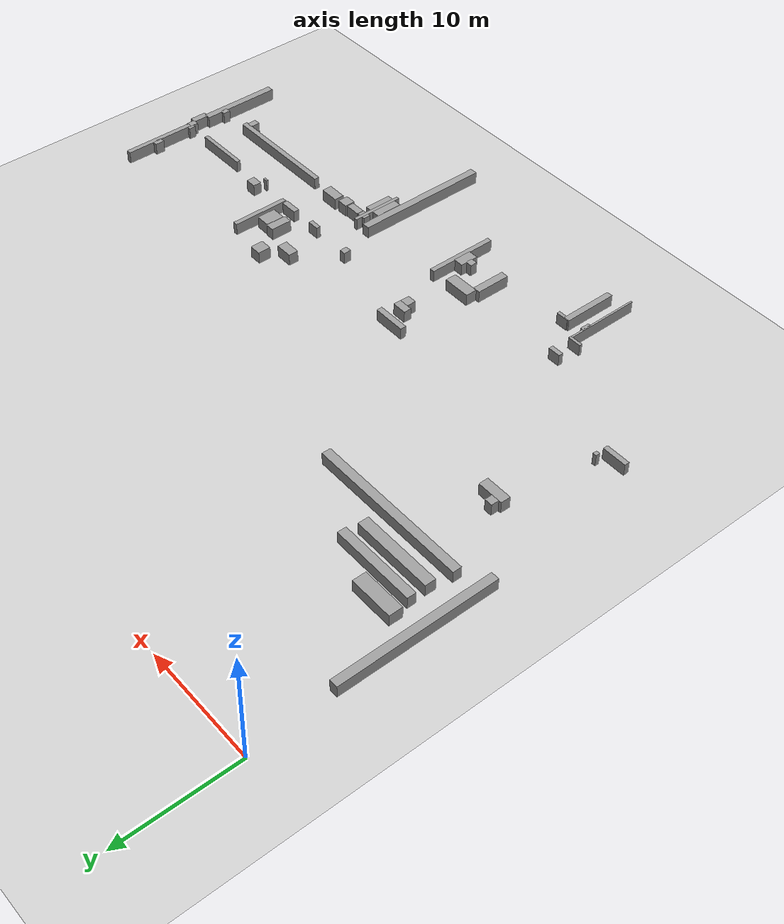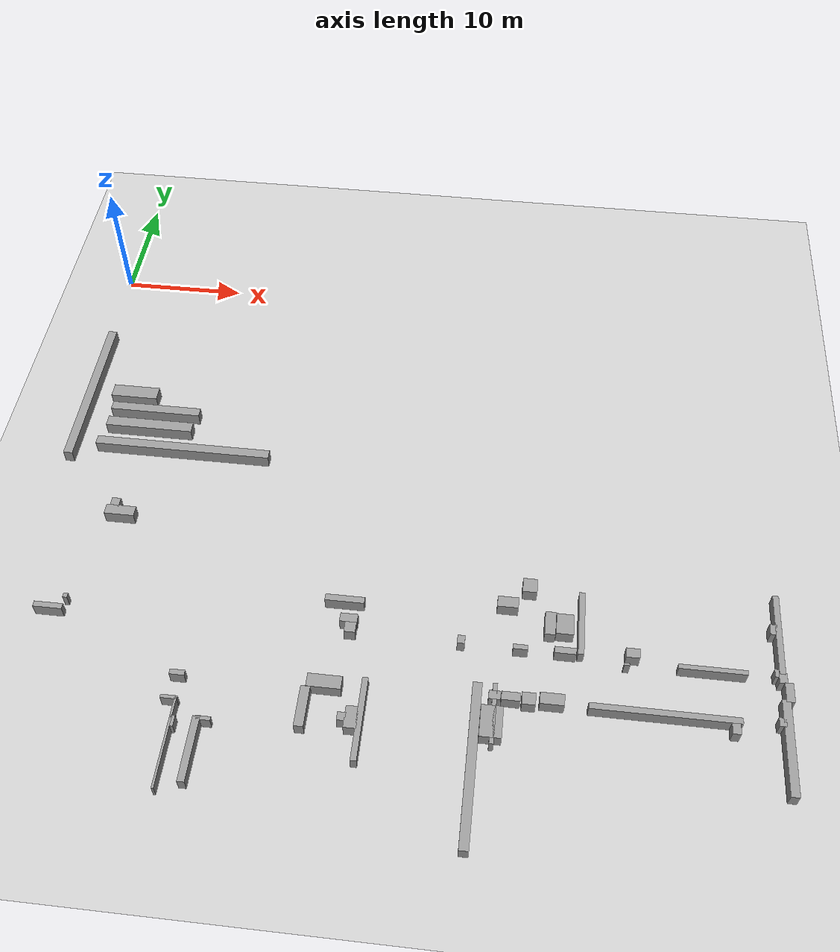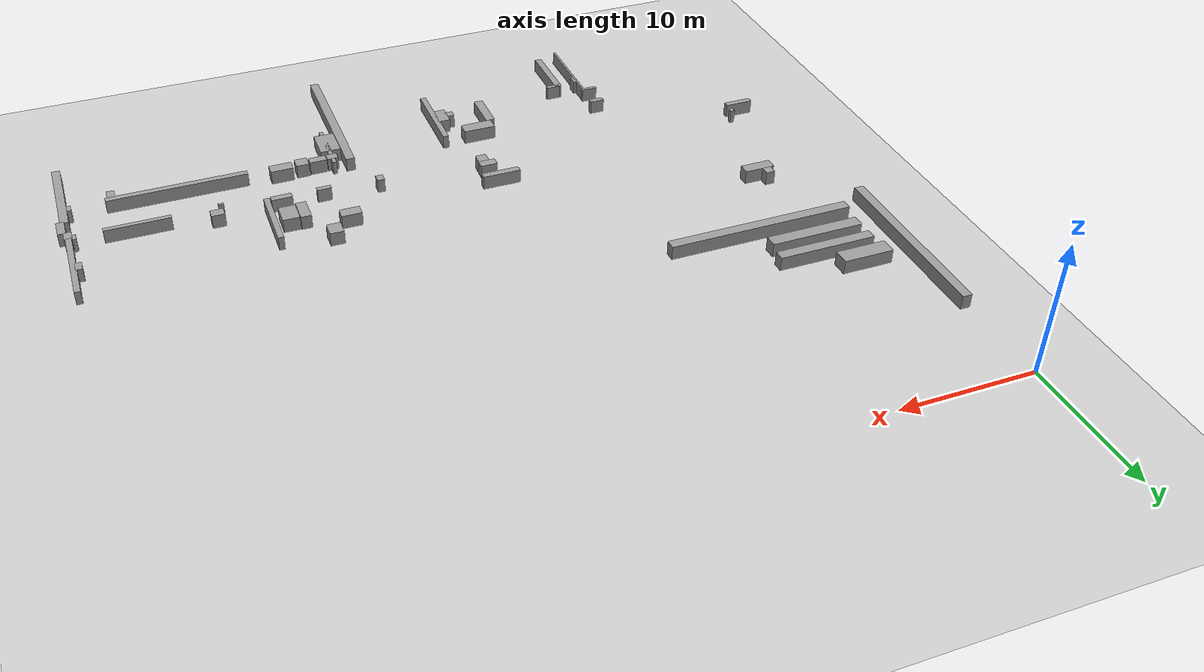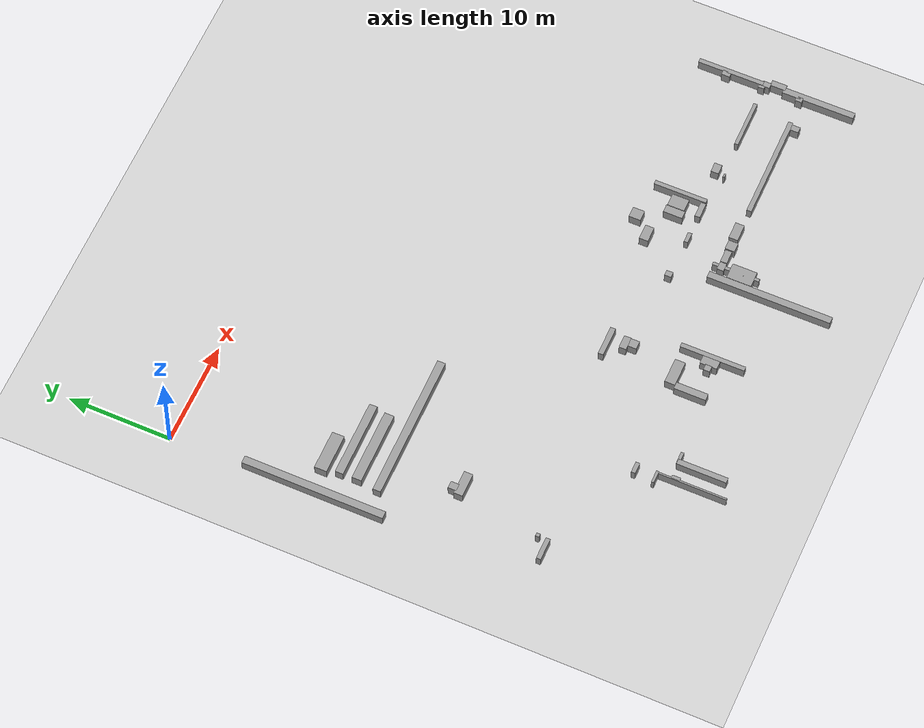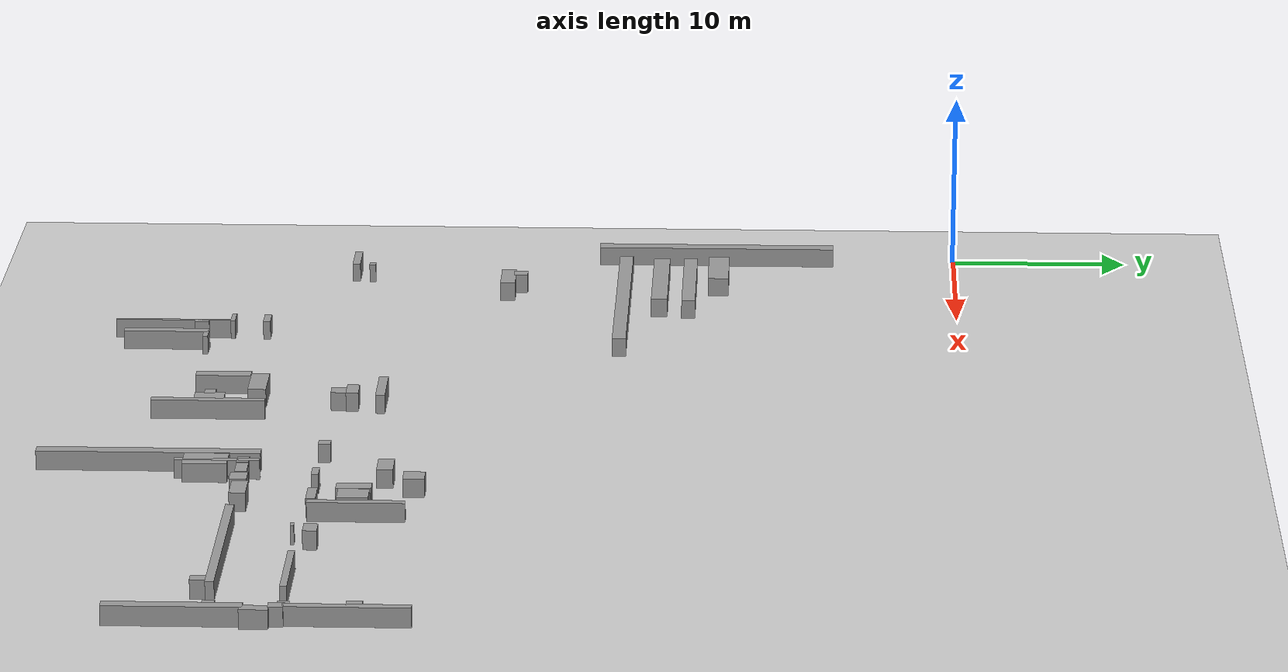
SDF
<sdf version="1.4">
 <world name="default">
  <model name="ground_plane">
   <static>1</static>
   <link name="link">
    <collision name="collision">
     <geometry><plane><normal>0 0 1</normal><size>300 300</size></plane></geometry>
     <surface><friction><ode><mu>100</mu><mu2>50</mu2></ode></friction></surface>
    </collision>
    <visual name="visual">
     <cast_shadows>0</cast_shadows>
     <geometry><plane><normal>0 0 1</normal><size>300 300</size></plane></geometry>
     <material>
      <script><uri>file://media/materials/scripts/gazebo.material</uri><name>Gazebo/Grey</name></script>
     </material>
    </visual>
    <velocity_decay><linear>0</linear><angular>0</angular></velocity_decay>
   </link>
  </model>
  <model name="wall_rect3658">
   <static>1</static>
   <link name="link">
    <pose>45.256091591426305 -33.98305300002584 0 0 -0 0</pose>
    <collision name="collision">
     <geometry><box><size>0.9770929998904935 0.7456762064442906 2.0</size></box></geometry>
    </collision>
    <visual name="visual">
     <cast_shadows>0</cast_shadows>
     <geometry><box><size>0.9770929998904935 0.7456762064442906 2.0</size></box></geometry>
     <material>
      <script>
       <uri>model://grey_wall/materials/scripts</uri>
       <uri>model://grey_wall/materials/textures</uri>
       <name>vrc/grey_wall</name>
      </script>
     </material>
    </visual>
    <velocity_decay><linear>0</linear><angular>0</angular></velocity_decay>
   </link>
  </model>
  <model name="wall_rect3660">
   <static>1</static>
   <link name="link">
    <pose>47.44169179278563 -38.418544152144946 0 0 -0 0</pose>
    <collision name="collision">
     <geometry><box><size>10.439467754176022 0.46283352929534244 2.0</size></box></geometry>
    </collision>
    <visual name="visual">
     <cast_shadows>0</cast_shadows>
     <geometry><box><size>10.439467754176022 0.46283352929534244 2.0</size></box></geometry>
     <material>
      <script>
       <uri>model://grey_wall/materials/scripts</uri>
       <uri>model://grey_wall/materials/textures</uri>
       <name>vrc/grey_wall</name>
      </script>
     </material>
    </visual>
    <velocity_decay><linear>0</linear><angular>0</angular></velocity_decay>
   </link>
  </model>
  <model name="wall_rect3662">
   <static>1</static>
   <link name="link">
    <pose>39.72779872590976 -38.21283936459783 0 0 -0 0</pose>
    <collision name="collision">
     <geometry><box><size>1.6970562932819433 0.8742412036864713 2.0</size></box></geometry>
    </collision>
    <visual name="visual">
     <cast_shadows>0</cast_shadows>
     <geometry><box><size>1.6970562932819433 0.8742412036864713 2.0</size></box></geometry>
     <material>
      <script>
       <uri>model://grey_wall/materials/scripts</uri>
       <uri>model://grey_wall/materials/textures</uri>
       <name>vrc/grey_wall</name>
      </script>
     </material>
    </visual>
    <velocity_decay><linear>0</linear><angular>0</angular></velocity_decay>
   </link>
  </model>
  <model name="wall_rect3664">
   <static>1</static>
   <link name="link">
    <pose>38.120739788202634 -38.36711684291488 0 0 -0 0</pose>
    <collision name="collision">
     <geometry><box><size>0.9513800868376526 0.925667029792153 2.0</size></box></geometry>
    </collision>
    <visual name="visual">
     <cast_shadows>0</cast_shadows>
     <geometry><box><size>0.9513800868376526 0.925667029792153 2.0</size></box></geometry>
     <material>
      <script>
       <uri>model://grey_wall/materials/scripts</uri>
       <uri>model://grey_wall/materials/textures</uri>
       <name>vrc/grey_wall</name>
      </script>
     </material>
    </visual>
    <velocity_decay><linear>0</linear><angular>0</angular></velocity_decay>
   </link>
  </model>
  <model name="wall_rect3666">
   <static>1</static>
   <link name="link">
    <pose>36.88651531790303 -38.3285487584701 0 0 -0 0</pose>
    <collision name="collision">
     <geometry><box><size>1.3113616615370483 0.6428243886413696 2.0</size></box></geometry>
    </collision>
    <visual name="visual">
     <cast_shadows>0</cast_shadows>
     <geometry><box><size>1.3113616615370483 0.6428243886413696 2.0</size></box></geometry>
     <material>
      <script>
       <uri>model://grey_wall/materials/scripts</uri>
       <uri>model://grey_wall/materials/textures</uri>
       <name>vrc/grey_wall</name>
      </script>
     </material>
    </visual>
    <velocity_decay><linear>0</linear><angular>0</angular></velocity_decay>
   </link>
  </model>
  <model name="wall_rect3668">
   <static>1</static>
   <link name="link">
    <pose>35.76800147621274 -38.3542600876037 0 0 -0 0</pose>
    <collision name="collision">
     <geometry><box><size>0.8228152335881308 0.6428243886413696 2.0</size></box></geometry>
    </collision>
    <visual name="visual">
     <cast_shadows>0</cast_shadows>
     <geometry><box><size>0.8228152335881308 0.6428243886413696 2.0</size></box></geometry>
     <material>
      <script>
       <uri>model://grey_wall/materials/scripts</uri>
       <uri>model://grey_wall/materials/textures</uri>
       <name>vrc/grey_wall</name>
      </script>
     </material>
    </visual>
    <velocity_decay><linear>0</linear><angular>0</angular></velocity_decay>
   </link>
  </model>
  <model name="wall_rect3670">
   <static>1</static>
   <link name="link">
    <pose>35.768002271772176 -39.74276240700144 0 0 -0 0</pose>
    <collision name="collision">
     <geometry><box><size>0.30855568379701726 4.55119662579123 2.0</size></box></geometry>
    </collision>
    <visual name="visual">
     <cast_shadows>0</cast_shadows>
     <geometry><box><size>0.30855568379701726 4.55119662579123 2.0</size></box></geometry>
     <material>
      <script>
       <uri>model://grey_wall/materials/scripts</uri>
       <uri>model://grey_wall/materials/textures</uri>
       <name>vrc/grey_wall</name>
      </script>
     </material>
    </visual>
    <velocity_decay><linear>0</linear><angular>0</angular></velocity_decay>
   </link>
  </model>
  <model name="wall_rect3672">
   <static>1</static>
   <link name="link">
    <pose>35.665150399972006 -40.35987246426229 0 0 -0 0</pose>
    <collision name="collision">
     <geometry><box><size>1.5427785269795804 2.3913067456168813 2.0</size></box></geometry>
    </collision>
    <visual name="visual">
     <cast_shadows>0</cast_shadows>
     <geometry><box><size>1.5427785269795804 2.3913067456168813 2.0</size></box></geometry>
     <material>
      <script>
       <uri>model://grey_wall/materials/scripts</uri>
       <uri>model://grey_wall/materials/textures</uri>
       <name>vrc/grey_wall</name>
      </script>
     </material>
    </visual>
    <velocity_decay><linear>0</linear><angular>0</angular></velocity_decay>
   </link>
  </model>
  <model name="wall_rect3674">
   <static>1</static>
   <link name="link">
    <pose>34.53377783747073 -43.508624476289704 0 0 -0 0</pose>
    <collision name="collision">
     <geometry><box><size>0.6685373304927421 11.980068248200434 2.0</size></box></geometry>
    </collision>
    <visual name="visual">
     <cast_shadows>0</cast_shadows>
     <geometry><box><size>0.6685373304927421 11.980068248200434 2.0</size></box></geometry>
     <material>
      <script>
       <uri>model://grey_wall/materials/scripts</uri>
       <uri>model://grey_wall/materials/textures</uri>
       <name>vrc/grey_wall</name>
      </script>
     </material>
    </visual>
    <velocity_decay><linear>0</linear><angular>0</angular></velocity_decay>
   </link>
  </model>
  <model name="wall_rect3676">
   <static>1</static>
   <link name="link">
    <pose>26.755603809095398 -41.144117932291344 0 0 -0 0</pose>
    <collision name="collision">
     <geometry><box><size>0.4371205874439697 6.222540078016662 2.0</size></box></geometry>
    </collision>
    <visual name="visual">
     <cast_shadows>0</cast_shadows>
     <geometry><box><size>0.4371205874439697 6.222540078016662 2.0</size></box></geometry>
     <material>
      <script>
       <uri>model://grey_wall/materials/scripts</uri>
       <uri>model://grey_wall/materials/textures</uri>
       <name>vrc/grey_wall</name>
      </script>
     </material>
    </visual>
    <velocity_decay><linear>0</linear><angular>0</angular></velocity_decay>
   </link>
  </model>
  <model name="wall_rect3678">
   <static>1</static>
   <link name="link">
    <pose>22.71326945627004 -40.68389579625673 0 0 -0 0</pose>
    <collision name="collision">
     <geometry><box><size>0.6859622061028839 3.0542321710269924 2.0</size></box></geometry>
    </collision>
    <visual name="visual">
     <cast_shadows>0</cast_shadows>
     <geometry><box><size>0.6859622061028839 3.0542321710269924 2.0</size></box></geometry>
     <material>
      <script>
       <uri>model://grey_wall/materials/scripts</uri>
       <uri>model://grey_wall/materials/textures</uri>
       <name>vrc/grey_wall</name>
      </script>
     </material>
    </visual>
    <velocity_decay><linear>0</linear><angular>0</angular></velocity_decay>
   </link>
  </model>
  <model name="wall_rect3680">
   <static>1</static>
   <link name="link">
    <pose>50.822951630634066 -34.66444850775728 0 0 -0 0</pose>
    <collision name="collision">
     <geometry><box><size>4.808326188297616 0.35998164669572486 2.0</size></box></geometry>
    </collision>
    <visual name="visual">
     <cast_shadows>0</cast_shadows>
     <geometry><box><size>4.808326188297616 0.35998164669572486 2.0</size></box></geometry>
     <material>
      <script>
       <uri>model://grey_wall/materials/scripts</uri>
       <uri>model://grey_wall/materials/textures</uri>
       <name>vrc/grey_wall</name>
      </script>
     </material>
    </visual>
    <velocity_decay><linear>0</linear><angular>0</angular></velocity_decay>
   </link>
  </model>
  <model name="wall_rect3682">
   <static>1</static>
   <link name="link">
    <pose>55.61842013486785 -34.81872605807065 0 0 -0 0</pose>
    <collision name="collision">
     <geometry><box><size>0.5656854478931246 0.7713892634897902 2.0</size></box></geometry>
    </collision>
    <visual name="visual">
     <cast_shadows>0</cast_shadows>
     <geometry><box><size>0.5656854478931246 0.7713892634897902 2.0</size></box></geometry>
     <material>
      <script>
       <uri>model://grey_wall/materials/scripts</uri>
       <uri>model://grey_wall/materials/textures</uri>
       <name>vrc/grey_wall</name>
      </script>
     </material>
    </visual>
    <velocity_decay><linear>0</linear><angular>0</angular></velocity_decay>
   </link>
  </model>
  <model name="wall_rect3684">
   <static>1</static>
   <link name="link">
    <pose>55.99125827408816 -35.88581450563324 0 0 -0 0</pose>
    <collision name="collision">
     <geometry><box><size>0.5913984329422949 1.4656395718320698 2.0</size></box></geometry>
    </collision>
    <visual name="visual">
     <cast_shadows>0</cast_shadows>
     <geometry><box><size>0.5913984329422949 1.4656395718320698 2.0</size></box></geometry>
     <material>
      <script>
       <uri>model://grey_wall/materials/scripts</uri>
       <uri>model://grey_wall/materials/textures</uri>
       <name>vrc/grey_wall</name>
      </script>
     </material>
    </visual>
    <velocity_decay><linear>0</linear><angular>0</angular></velocity_decay>
   </link>
  </model>
  <model name="wall_rect3686">
   <static>1</static>
   <link name="link">
    <pose>55.69555935640177 -39.99989081756655 0 0 -0 0</pose>
    <collision name="collision">
     <geometry><box><size>0.6171113747936674 7.071068152661304 2.0</size></box></geometry>
    </collision>
    <visual name="visual">
     <cast_shadows>0</cast_shadows>
     <geometry><box><size>0.6171113747936674 7.071068152661304 2.0</size></box></geometry>
     <material>
      <script>
       <uri>model://grey_wall/materials/scripts</uri>
       <uri>model://grey_wall/materials/textures</uri>
       <name>vrc/grey_wall</name>
      </script>
     </material>
    </visual>
    <velocity_decay><linear>0</linear><angular>0</angular></velocity_decay>
   </link>
  </model>
  <model name="wall_rect3688">
   <static>1</static>
   <link name="link">
    <pose>52.18573965464945 -39.03565423820432 0 0 -0 0</pose>
    <collision name="collision">
     <geometry><box><size>0.5913984329422949 0.8228152335881308 2.0</size></box></geometry>
    </collision>
    <visual name="visual">
     <cast_shadows>0</cast_shadows>
     <geometry><box><size>0.5913984329422949 0.8228152335881308 2.0</size></box></geometry>
     <material>
      <script>
       <uri>model://grey_wall/materials/scripts</uri>
       <uri>model://grey_wall/materials/textures</uri>
       <name>vrc/grey_wall</name>
      </script>
     </material>
    </visual>
    <velocity_decay><linear>0</linear><angular>0</angular></velocity_decay>
   </link>
  </model>
  <model name="wall_rect3690">
   <static>1</static>
   <link name="link">
    <pose>55.3227222539286 -38.19997987342613 0 0 -0 0</pose>
    <collision name="collision">
     <geometry><box><size>0.4885465071448797 0.6428243886413696 2.0</size></box></geometry>
    </collision>
    <visual name="visual">
     <cast_shadows>0</cast_shadows>
     <geometry><box><size>0.4885465071448797 0.6428243886413696 2.0</size></box></geometry>
     <material>
      <script>
       <uri>model://grey_wall/materials/scripts</uri>
       <uri>model://grey_wall/materials/textures</uri>
       <name>vrc/grey_wall</name>
      </script>
     </material>
    </visual>
    <velocity_decay><linear>0</linear><angular>0</angular></velocity_decay>
   </link>
  </model>
  <model name="wall_rect3692">
   <static>1</static>
   <link name="link">
    <pose>55.24557962696829 -30.936067187550506 0 0 -0 0</pose>
    <collision name="collision">
     <geometry><box><size>0.4885465071448797 0.8228152335881308 2.0</size></box></geometry>
    </collision>
    <visual name="visual">
     <cast_shadows>0</cast_shadows>
     <geometry><box><size>0.4885465071448797 0.8228152335881308 2.0</size></box></geometry>
     <material>
      <script>
       <uri>model://grey_wall/materials/scripts</uri>
       <uri>model://grey_wall/materials/textures</uri>
       <name>vrc/grey_wall</name>
      </script>
     </material>
    </visual>
    <velocity_decay><linear>0</linear><angular>0</angular></velocity_decay>
   </link>
  </model>
  <model name="wall_rect3694">
   <static>1</static>
   <link name="link">
    <pose>55.605563962726926 -31.28319273770146 0 0 -0 0</pose>
    <collision name="collision">
     <geometry><box><size>0.4371205874439697 6.453956871462865 2.0</size></box></geometry>
    </collision>
    <visual name="visual">
     <cast_shadows>0</cast_shadows>
     <geometry><box><size>0.4371205874439697 6.453956871462865 2.0</size></box></geometry>
     <material>
      <script>
       <uri>model://grey_wall/materials/scripts</uri>
       <uri>model://grey_wall/materials/textures</uri>
       <name>vrc/grey_wall</name>
      </script>
     </material>
    </visual>
    <velocity_decay><linear>0</linear><angular>0</angular></velocity_decay>
   </link>
  </model>
  <model name="wall_rect4496">
   <static>1</static>
   <link name="link">
    <pose>23.937180214803927 -38.63710343791833 0 0 -0 0</pose>
    <collision name="collision">
     <geometry><box><size>2.4684454847754043 1.0028060569359931 2.0</size></box></geometry>
    </collision>
    <visual name="visual">
     <cast_shadows>0</cast_shadows>
     <geometry><box><size>2.4684454847754043 1.0028060569359931 2.0</size></box></geometry>
     <material>
      <script>
       <uri>model://grey_wall/materials/scripts</uri>
       <uri>model://grey_wall/materials/textures</uri>
       <name>vrc/grey_wall</name>
      </script>
     </material>
    </visual>
    <velocity_decay><linear>0</linear><angular>0</angular></velocity_decay>
   </link>
  </model>
  <model name="wall_rect4498">
   <static>1</static>
   <link name="link">
    <pose>26.164206204110886 -41.118405487214645 0 0 -0 0</pose>
    <collision name="collision">
     <geometry><box><size>0.8999541167393121 1.6456303951799323 2.0</size></box></geometry>
    </collision>
    <visual name="visual">
     <cast_shadows>0</cast_shadows>
     <geometry><box><size>0.8999541167393121 1.6456303951799323 2.0</size></box></geometry>
     <material>
      <script>
       <uri>model://grey_wall/materials/scripts</uri>
       <uri>model://grey_wall/materials/textures</uri>
       <name>vrc/grey_wall</name>
      </script>
     </material>
    </visual>
    <velocity_decay><linear>0</linear><angular>0</angular></velocity_decay>
   </link>
  </model>
  <model name="wall_rect4500">
   <static>1</static>
   <link name="link">
    <pose>25.495667221302387 -41.1441184470651 0 0 -0 0</pose>
    <collision name="collision">
     <geometry><box><size>0.5913984329422949 0.6171113747936674 2.0</size></box></geometry>
    </collision>
    <visual name="visual">
     <cast_shadows>0</cast_shadows>
     <geometry><box><size>0.5913984329422949 0.6171113747936674 2.0</size></box></geometry>
     <material>
      <script>
       <uri>model://grey_wall/materials/scripts</uri>
       <uri>model://grey_wall/materials/textures</uri>
       <name>vrc/grey_wall</name>
      </script>
     </material>
    </visual>
    <velocity_decay><linear>0</linear><angular>0</angular></velocity_decay>
   </link>
  </model>
  <model name="wall_rect4502">
   <static>1</static>
   <link name="link">
    <pose>13.990909999044607 -44.32921423134163 0 0 -0 0</pose>
    <collision name="collision">
     <geometry><box><size>0.1636363603638032 6.636364035616008 2.0</size></box></geometry>
    </collision>
    <visual name="visual">
     <cast_shadows>0</cast_shadows>
     <geometry><box><size>0.1636363603638032 6.636364035616008 2.0</size></box></geometry>
     <material>
      <script>
       <uri>model://grey_wall/materials/scripts</uri>
       <uri>model://grey_wall/materials/textures</uri>
       <name>vrc/grey_wall</name>
      </script>
     </material>
    </visual>
    <velocity_decay><linear>0</linear><angular>0</angular></velocity_decay>
   </link>
  </model>
  <model name="wall_rect4504">
   <static>1</static>
   <link name="link">
    <pose>14.136364377598573 -42.76558117560934 0 0 -0 0</pose>
    <collision name="collision">
     <geometry><box><size>0.30909093330785625 0.8181818378171808 2.0</size></box></geometry>
    </collision>
    <visual name="visual">
     <cast_shadows>0</cast_shadows>
     <geometry><box><size>0.30909093330785625 0.8181818378171808 2.0</size></box></geometry>
     <material>
      <script>
       <uri>model://grey_wall/materials/scripts</uri>
       <uri>model://grey_wall/materials/textures</uri>
       <name>vrc/grey_wall</name>
      </script>
     </material>
    </visual>
    <velocity_decay><linear>0</linear><angular>0</angular></velocity_decay>
   </link>
  </model>
  <model name="wall_rect4506">
   <static>1</static>
   <link name="link">
    <pose>13.509091624472616 -41.02921610684601 0 0 -0 0</pose>
    <collision name="collision">
     <geometry><box><size>1.2000000431977975 0.25454546305411163 2.0</size></box></geometry>
    </collision>
    <visual name="visual">
     <cast_shadows>0</cast_shadows>
     <geometry><box><size>1.2000000431977975 0.25454546305411163 2.0</size></box></geometry>
     <material>
      <script>
       <uri>model://grey_wall/materials/scripts</uri>
       <uri>model://grey_wall/materials/textures</uri>
       <name>vrc/grey_wall</name>
      </script>
     </material>
    </visual>
    <velocity_decay><linear>0</linear><angular>0</angular></velocity_decay>
   </link>
  </model>
  <model name="wall_rect4508">
   <static>1</static>
   <link name="link">
    <pose>13.636363531641702 -39.10194511403031 0 0 -0 0</pose>
    <collision name="collision">
     <geometry><box><size>1.0909091170895744 0.4000000215988988 2.0</size></box></geometry>
    </collision>
    <visual name="visual">
     <cast_shadows>0</cast_shadows>
     <geometry><box><size>1.0909091170895744 0.4000000215988988 2.0</size></box></geometry>
     <material>
      <script>
       <uri>model://grey_wall/materials/scripts</uri>
       <uri>model://grey_wall/materials/textures</uri>
       <name>vrc/grey_wall</name>
      </script>
     </material>
    </visual>
    <velocity_decay><linear>0</linear><angular>0</angular></velocity_decay>
   </link>
  </model>
  <model name="wall_rect4510">
   <static>1</static>
   <link name="link">
    <pose>15.718182680174234 -44.620124435575775 0 0 -0 0</pose>
    <collision name="collision">
     <geometry><box><size>0.5272727495261381 4.745454673738914 2.0</size></box></geometry>
    </collision>
    <visual name="visual">
     <cast_shadows>0</cast_shadows>
     <geometry><box><size>0.5272727495261381 4.745454673738914 2.0</size></box></geometry>
     <material>
      <script>
       <uri>model://grey_wall/materials/scripts</uri>
       <uri>model://grey_wall/materials/textures</uri>
       <name>vrc/grey_wall</name>
      </script>
     </material>
    </visual>
    <velocity_decay><linear>0</linear><angular>0</angular></velocity_decay>
   </link>
  </model>
  <model name="wall_rect4512">
   <static>1</static>
   <link name="link">
    <pose>16.154545952629153 -42.33830507465407 0 0 -0 0</pose>
    <collision name="collision">
     <geometry><box><size>1.1090909261082234 0.29090910988994134 2.0</size></box></geometry>
    </collision>
    <visual name="visual">
     <cast_shadows>0</cast_shadows>
     <geometry><box><size>1.1090909261082234 0.29090910988994134 2.0</size></box></geometry>
     <material>
      <script>
       <uri>model://grey_wall/materials/scripts</uri>
       <uri>model://grey_wall/materials/textures</uri>
       <name>vrc/grey_wall</name>
      </script>
     </material>
    </visual>
    <velocity_decay><linear>0</linear><angular>0</angular></velocity_decay>
   </link>
  </model>
  <model name="wall_rect4514">
   <static>1</static>
   <link name="link">
    <pose>3.0353852599179083 -34.79301338980533 0 0 -0 0</pose>
    <collision name="collision">
     <geometry><box><size>2.159889880174349 0.4371205874439697 2.0</size></box></geometry>
    </collision>
    <visual name="visual">
     <cast_shadows>0</cast_shadows>
     <geometry><box><size>2.159889880174349 0.4371205874439697 2.0</size></box></geometry>
     <material>
      <script>
       <uri>model://grey_wall/materials/scripts</uri>
       <uri>model://grey_wall/materials/textures</uri>
       <name>vrc/grey_wall</name>
      </script>
     </material>
    </visual>
    <velocity_decay><linear>0</linear><angular>0</angular></velocity_decay>
   </link>
  </model>
  <model name="wall_rect4516">
   <static>1</static>
   <link name="link">
    <pose>4.063904053515736 -33.841629818345346 0 0 -0 0</pose>
    <collision name="collision">
     <geometry><box><size>0.3342686688461875 0.35998164669572486 2.0</size></box></geometry>
    </collision>
    <visual name="visual">
     <cast_shadows>0</cast_shadows>
     <geometry><box><size>0.3342686688461875 0.35998164669572486 2.0</size></box></geometry>
     <material>
      <script>
       <uri>model://grey_wall/materials/scripts</uri>
       <uri>model://grey_wall/materials/textures</uri>
       <name>vrc/grey_wall</name>
      </script>
     </material>
    </visual>
    <velocity_decay><linear>0</linear><angular>0</angular></velocity_decay>
   </link>
  </model>
  <model name="wall_rect4518">
   <static>1</static>
   <link name="link">
    <pose>4.1153300920105895 -13.708373684276081 0 0 -0 0</pose>
    <collision name="collision">
     <geometry><box><size>3.805520275354281 1.1827968802838555 2.0</size></box></geometry>
    </collision>
    <visual name="visual">
     <cast_shadows>0</cast_shadows>
     <geometry><box><size>3.805520275354281 1.1827968802838555 2.0</size></box></geometry>
     <material>
      <script>
       <uri>model://grey_wall/materials/scripts</uri>
       <uri>model://grey_wall/materials/textures</uri>
       <name>vrc/grey_wall</name>
      </script>
     </material>
    </visual>
    <velocity_decay><linear>0</linear><angular>0</angular></velocity_decay>
   </link>
  </model>
  <model name="wall_rect4520">
   <static>1</static>
   <link name="link">
    <pose>6.249507095130261 -15.354004367441329 0 0 -0 0</pose>
    <collision name="collision">
     <geometry><box><size>7.353910988202177 0.7713892634897902 2.0</size></box></geometry>
    </collision>
    <visual name="visual">
     <cast_shadows>0</cast_shadows>
     <geometry><box><size>7.353910988202177 0.7713892634897902 2.0</size></box></geometry>
     <material>
      <script>
       <uri>model://grey_wall/materials/scripts</uri>
       <uri>model://grey_wall/materials/textures</uri>
       <name>vrc/grey_wall</name>
      </script>
     </material>
    </visual>
    <velocity_decay><linear>0</linear><angular>0</angular></velocity_decay>
   </link>
  </model>
  <model name="wall_rect4522">
   <static>1</static>
   <link name="link">
    <pose>6.146655082937251 -17.02534573177321 0 0 -0 0</pose>
    <collision name="collision">
     <geometry><box><size>7.045354879626817 0.925667029792153 2.0</size></box></geometry>
    </collision>
    <visual name="visual">
     <cast_shadows>0</cast_shadows>
     <geometry><box><size>7.045354879626817 0.925667029792153 2.0</size></box></geometry>
     <material>
      <script>
       <uri>model://grey_wall/materials/scripts</uri>
       <uri>model://grey_wall/materials/textures</uri>
       <name>vrc/grey_wall</name>
      </script>
     </material>
    </visual>
    <velocity_decay><linear>0</linear><angular>0</angular></velocity_decay>
   </link>
  </model>
  <model name="wall_rect4524">
   <static>1</static>
   <link name="link">
    <pose>9.360776630164288 -19.108097448759672 0 0 -0 0</pose>
    <collision name="collision">
     <geometry><box><size>14.090709759253635 0.7713892634897902 2.0</size></box></geometry>
    </collision>
    <visual name="visual">
     <cast_shadows>0</cast_shadows>
     <geometry><box><size>14.090709759253635 0.7713892634897902 2.0</size></box></geometry>
     <material>
      <script>
       <uri>model://grey_wall/materials/scripts</uri>
       <uri>model://grey_wall/materials/textures</uri>
       <name>vrc/grey_wall</name>
      </script>
     </material>
    </visual>
    <velocity_decay><linear>0</linear><angular>0</angular></velocity_decay>
   </link>
  </model>
  <model name="wall_rect4526">
   <static>1</static>
   <link name="link">
    <pose>0.3636363521552375 -13.883759406410423 0 0 -0 0</pose>
    <collision name="collision">
     <geometry><box><size>0.7272727207276064 13.672727869642294 2.0</size></box></geometry>
    </collision>
    <visual name="visual">
     <cast_shadows>0</cast_shadows>
     <geometry><box><size>0.7272727207276064 13.672727869642294 2.0</size></box></geometry>
     <material>
      <script>
       <uri>model://grey_wall/materials/scripts</uri>
       <uri>model://grey_wall/materials/textures</uri>
       <name>vrc/grey_wall</name>
      </script>
     </material>
    </visual>
    <velocity_decay><linear>0</linear><angular>0</angular></velocity_decay>
   </link>
  </model>
  <model name="wall_rect4956">
   <static>1</static>
   <link name="link">
    <pose>6.016836089628807 -25.829935670559774 0 0 -0 0</pose>
    <collision name="collision">
     <geometry><box><size>2.3141677184730414 0.8485281466409716 2.0</size></box></geometry>
    </collision>
    <visual name="visual">
     <cast_shadows>0</cast_shadows>
     <geometry><box><size>2.3141677184730414 0.8485281466409716 2.0</size></box></geometry>
     <material>
      <script>
       <uri>model://grey_wall/materials/scripts</uri>
       <uri>model://grey_wall/materials/textures</uri>
       <name>vrc/grey_wall</name>
      </script>
     </material>
    </visual>
    <velocity_decay><linear>0</linear><angular>0</angular></velocity_decay>
   </link>
  </model>
  <model name="wall_rect4958">
   <static>1</static>
   <link name="link">
    <pose>5.46400696866871 -25.135684210276224 0 0 -0 0</pose>
    <collision name="collision">
     <geometry><box><size>0.694250351540077 0.797102176542631 2.0</size></box></geometry>
    </collision>
    <visual name="visual">
     <cast_shadows>0</cast_shadows>
     <geometry><box><size>0.694250351540077 0.797102176542631 2.0</size></box></geometry>
     <material>
      <script>
       <uri>model://grey_wall/materials/scripts</uri>
       <uri>model://grey_wall/materials/textures</uri>
       <name>vrc/grey_wall</name>
      </script>
     </material>
    </visual>
    <velocity_decay><linear>0</linear><angular>0</angular></velocity_decay>
   </link>
  </model>
  <model name="wall_rect4284">
   <static>1</static>
   <link name="link">
    <pose>33.11059060964836 -34.243402540764855 0 0 -0 0</pose>
    <collision name="collision">
     <geometry><box><size>0.5399724700435873 0.6556808235688912 2.0</size></box></geometry>
    </collision>
    <visual name="visual">
     <cast_shadows>0</cast_shadows>
     <geometry><box><size>0.5399724700435873 0.6556808235688912 2.0</size></box></geometry>
     <material>
      <script>
       <uri>model://grey_wall/materials/scripts</uri>
       <uri>model://grey_wall/materials/textures</uri>
       <name>vrc/grey_wall</name>
      </script>
     </material>
    </visual>
    <velocity_decay><linear>0</linear><angular>0</angular></velocity_decay>
   </link>
  </model>
  <model name="wall_rect4295">
   <static>1</static>
   <link name="link">
    <pose>44.83636635029799 -34.941498349448146 0 0 -0 0</pose>
    <collision name="collision">
     <geometry><box><size>0.4000000215988988 0.18181818378171805 2.0</size></box></geometry>
    </collision>
    <visual name="visual">
     <cast_shadows>0</cast_shadows>
     <geometry><box><size>0.4000000215988988 0.18181818378171805 2.0</size></box></geometry>
     <material>
      <script>
       <uri>model://grey_wall/materials/scripts</uri>
       <uri>model://grey_wall/materials/textures</uri>
       <name>vrc/grey_wall</name>
      </script>
     </material>
    </visual>
    <velocity_decay><linear>0</linear><angular>0</angular></velocity_decay>
   </link>
  </model>
  <model name="wall_rect4297">
   <static>1</static>
   <link name="link">
    <pose>55.2090910952996 -34.45968081003358 0 0 -0 0</pose>
    <collision name="collision">
     <geometry><box><size>0.2727272864720265 0.6000000143992659 2.0</size></box></geometry>
    </collision>
    <visual name="visual">
     <cast_shadows>0</cast_shadows>
     <geometry><box><size>0.2727272864720265 0.6000000143992659 2.0</size></box></geometry>
     <material>
      <script>
       <uri>model://grey_wall/materials/scripts</uri>
       <uri>model://grey_wall/materials/textures</uri>
       <name>vrc/grey_wall</name>
      </script>
     </material>
    </visual>
    <velocity_decay><linear>0</linear><angular>0</angular></velocity_decay>
   </link>
  </model>
  <model name="wall_rect4299">
   <static>1</static>
   <link name="link">
    <pose>39.38181644147055 -32.19604380890245 0 0 -0 0</pose>
    <collision name="collision">
     <geometry><box><size>0.7818181477835534 1.8727272648731277 2.0</size></box></geometry>
    </collision>
    <visual name="visual">
     <cast_shadows>0</cast_shadows>
     <geometry><box><size>0.7818181477835534 1.8727272648731277 2.0</size></box></geometry>
     <material>
      <script>
       <uri>model://grey_wall/materials/scripts</uri>
       <uri>model://grey_wall/materials/textures</uri>
       <name>vrc/grey_wall</name>
      </script>
     </material>
    </visual>
    <velocity_decay><linear>0</linear><angular>0</angular></velocity_decay>
   </link>
  </model>
  <model name="wall_rect4301">
   <static>1</static>
   <link name="link">
    <pose>37.34875936285265 -34.38364629657721 0 0 -0 0</pose>
    <collision name="collision">
     <geometry><box><size>1.0545454990522762 0.38181819818098395 2.0</size></box></geometry>
    </collision>
    <visual name="visual">
     <cast_shadows>0</cast_shadows>
     <geometry><box><size>1.0545454990522762 0.38181819818098395 2.0</size></box></geometry>
     <material>
      <script>
       <uri>model://grey_wall/materials/scripts</uri>
       <uri>model://grey_wall/materials/textures</uri>
       <name>vrc/grey_wall</name>
      </script>
     </material>
    </visual>
    <velocity_decay><linear>0</linear><angular>0</angular></velocity_decay>
   </link>
  </model>
  <model name="wall_rect4303">
   <static>1</static>
   <link name="link">
    <pose>40.52045592107532 -34.31877353245022 0 0 -0 0</pose>
    <collision name="collision">
     <geometry><box><size>1.5590910233032678 0.5090909261082233 2.0</size></box></geometry>
    </collision>
    <visual name="visual">
     <cast_shadows>0</cast_shadows>
     <geometry><box><size>1.5590910233032678 0.5090909261082233 2.0</size></box></geometry>
     <material>
      <script>
       <uri>model://grey_wall/materials/scripts</uri>
       <uri>model://grey_wall/materials/textures</uri>
       <name>vrc/grey_wall</name>
      </script>
     </material>
    </visual>
    <velocity_decay><linear>0</linear><angular>0</angular></velocity_decay>
   </link>
  </model>
  <model name="wall_rect4305">
   <static>1</static>
   <link name="link">
    <pose>37.781818003790896 -29.150590294304433 0 0 -0 0</pose>
    <collision name="collision">
     <geometry><box><size>1.0545454990522762 1.1454546161418506 2.0</size></box></geometry>
    </collision>
    <visual name="visual">
     <cast_shadows>0</cast_shadows>
     <geometry><box><size>1.0545454990522762 1.1454546161418506 2.0</size></box></geometry>
     <material>
      <script>
       <uri>model://grey_wall/materials/scripts</uri>
       <uri>model://grey_wall/materials/textures</uri>
       <name>vrc/grey_wall</name>
      </script>
     </material>
    </visual>
    <velocity_decay><linear>0</linear><angular>0</angular></velocity_decay>
   </link>
  </model>
  <model name="wall_rect4307">
   <static>1</static>
   <link name="link">
    <pose>36.254546586196845 -30.759680428453034 0 0 -0 0</pose>
    <collision name="collision">
     <geometry><box><size>1.5272727495261382 0.8727272648731277 2.0</size></box></geometry>
    </collision>
    <visual name="visual">
     <cast_shadows>0</cast_shadows>
     <geometry><box><size>1.5272727495261382 0.8727272648731277 2.0</size></box></geometry>
     <material>
      <script>
       <uri>model://grey_wall/materials/scripts</uri>
       <uri>model://grey_wall/materials/textures</uri>
       <name>vrc/grey_wall</name>
      </script>
     </material>
    </visual>
    <velocity_decay><linear>0</linear><angular>0</angular></velocity_decay>
   </link>
  </model>
  <model name="wall_rect4309">
   <static>1</static>
   <link name="link">
    <pose>41.60909410474616 -31.923316853613535 0 0 -0 0</pose>
    <collision name="collision">
     <geometry><box><size>0.41818184501681366 5.127272735126872 2.0</size></box></geometry>
    </collision>
    <visual name="visual">
     <cast_shadows>0</cast_shadows>
     <geometry><box><size>0.41818184501681366 5.127272735126872 2.0</size></box></geometry>
     <material>
      <script>
       <uri>model://grey_wall/materials/scripts</uri>
       <uri>model://grey_wall/materials/textures</uri>
       <name>vrc/grey_wall</name>
      </script>
     </material>
    </visual>
    <velocity_decay><linear>0</linear><angular>0</angular></velocity_decay>
   </link>
  </model>
  <model name="wall_rect4311">
   <static>1</static>
   <link name="link">
    <pose>40.43636078858155 -32.15968073083762 0 0 -0 0</pose>
    <collision name="collision">
     <geometry><box><size>1.2545454702537446 1.6545454846530103 2.0</size></box></geometry>
    </collision>
    <visual name="visual">
     <cast_shadows>0</cast_shadows>
     <geometry><box><size>1.2545454702537446 1.6545454846530103 2.0</size></box></geometry>
     <material>
      <script>
       <uri>model://grey_wall/materials/scripts</uri>
       <uri>model://grey_wall/materials/textures</uri>
       <name>vrc/grey_wall</name>
      </script>
     </material>
    </visual>
    <velocity_decay><linear>0</linear><angular>0</angular></velocity_decay>
   </link>
  </model>
  <model name="wall_rect4313">
   <static>1</static>
   <link name="link">
    <pose>24.915872037180055 -33.38312284726476 0 0 -0 0</pose>
    <collision name="collision">
     <geometry><box><size>1.2856487484842074 0.6813938446162261 2.0</size></box></geometry>
    </collision>
    <visual name="visual">
     <cast_shadows>0</cast_shadows>
     <geometry><box><size>1.2856487484842074 0.6813938446162261 2.0</size></box></geometry>
     <material>
      <script>
       <uri>model://grey_wall/materials/scripts</uri>
       <uri>model://grey_wall/materials/textures</uri>
       <name>vrc/grey_wall</name>
      </script>
     </material>
    </visual>
    <velocity_decay><linear>0</linear><angular>0</angular></velocity_decay>
   </link>
  </model>
  <model name="wall_rect4315">
   <static>1</static>
   <link name="link">
    <pose>25.115148121288183 -34.1352262416253 0 0 -0 0</pose>
    <collision name="collision">
     <geometry><box><size>0.8228152335881308 0.8228152335881308 2.0</size></box></geometry>
    </collision>
    <visual name="visual">
     <cast_shadows>0</cast_shadows>
     <geometry><box><size>0.8228152335881308 0.8228152335881308 2.0</size></box></geometry>
     <material>
      <script>
       <uri>model://grey_wall/materials/scripts</uri>
       <uri>model://grey_wall/materials/textures</uri>
       <name>vrc/grey_wall</name>
      </script>
     </material>
    </visual>
    <velocity_decay><linear>0</linear><angular>0</angular></velocity_decay>
   </link>
  </model>
  <model name="wall_rect4317">
   <static>1</static>
   <link name="link">
    <pose>24.401613056159942 -31.821060650643787 0 0 -0 0</pose>
    <collision name="collision">
     <geometry><box><size>2.905566158614969 0.51425949219405 2.0</size></box></geometry>
    </collision>
    <visual name="visual">
     <cast_shadows>0</cast_shadows>
     <geometry><box><size>2.905566158614969 0.51425949219405 2.0</size></box></geometry>
     <material>
      <script>
       <uri>model://grey_wall/materials/scripts</uri>
       <uri>model://grey_wall/materials/textures</uri>
       <name>vrc/grey_wall</name>
      </script>
     </material>
    </visual>
    <velocity_decay><linear>0</linear><angular>0</angular></velocity_decay>
   </link>
  </model>
 </world>
</sdf>
